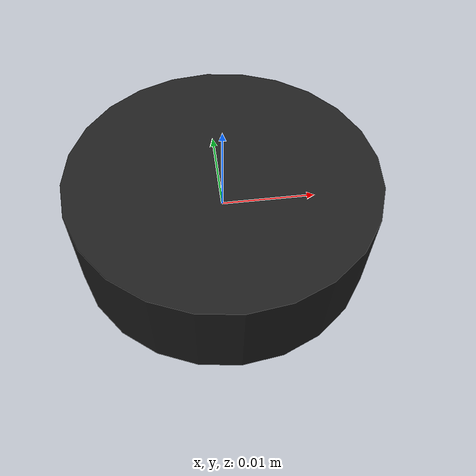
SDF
<?xml version="1.0" ?>
<sdf version="1.7">
  <model name="black_checker">
    <static>false</static>

    <link name="piece_link">
      <inertial>
        <mass>0.02</mass>
        <inertia>
          <ixx>2e-6</ixx>
          <iyy>2e-6</iyy>
          <izz>2e-6</izz>
          <ixy>0</ixy>
          <ixz>0</ixz>
          <iyz>0</iyz>
        </inertia>
      </inertial>

      <collision name="collision">
        <geometry>
          <cylinder>
            <radius>0.016</radius>
            <length>0.010</length>
          </cylinder>
        </geometry>
      </collision>

      <visual name="visual">
        <geometry>
          <cylinder>
            <radius>0.016</radius>
            <length>0.010</length>
          </cylinder>
        </geometry>
        <material>
          <ambient>0.08 0.08 0.08 1</ambient>
          <diffuse>0.12 0.12 0.12 1</diffuse>
          <specular>0.2 0.2 0.2 1</specular>
        </material>
      </visual>
    </link>
  </model>
</sdf>
